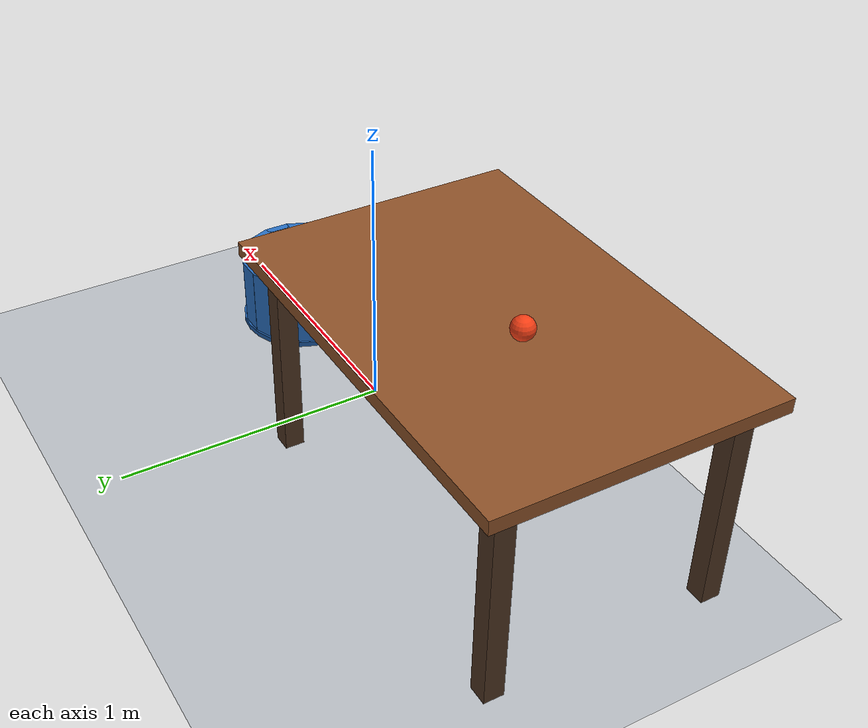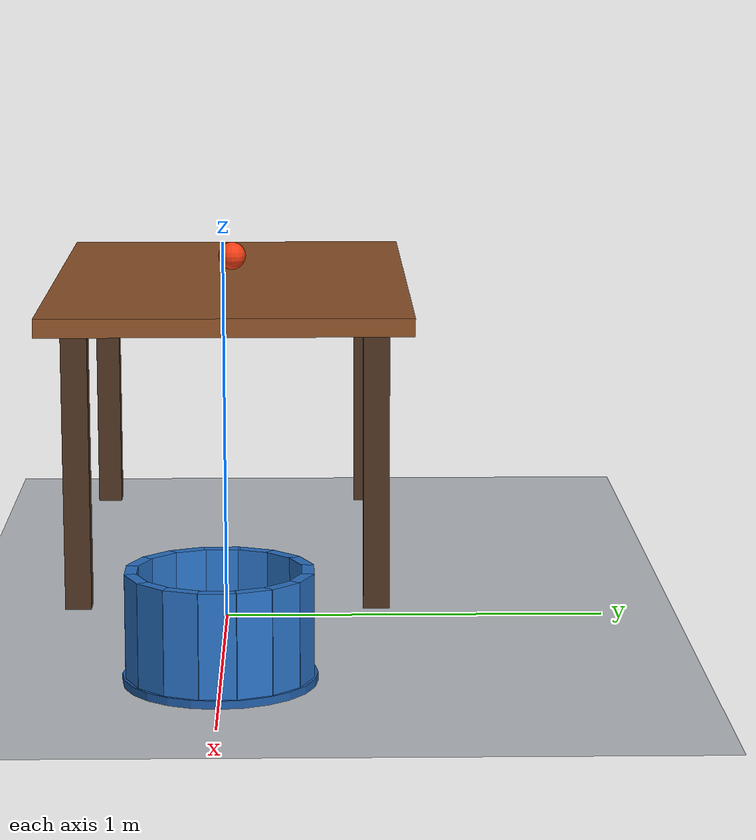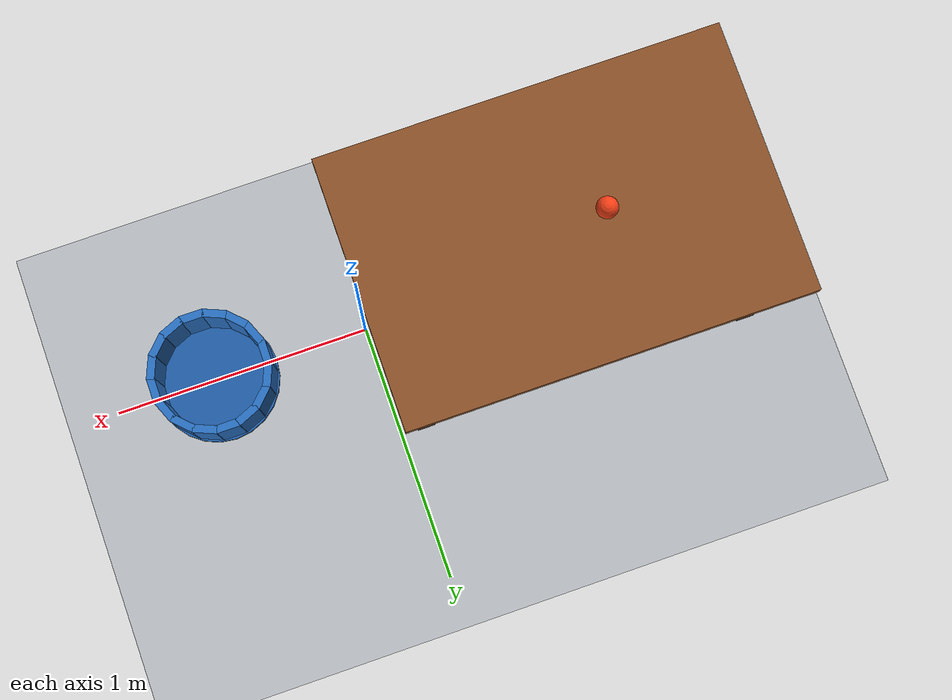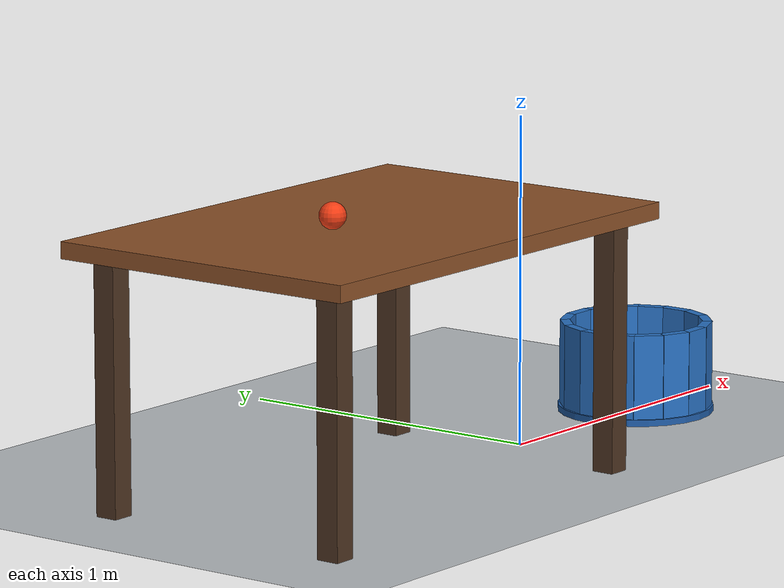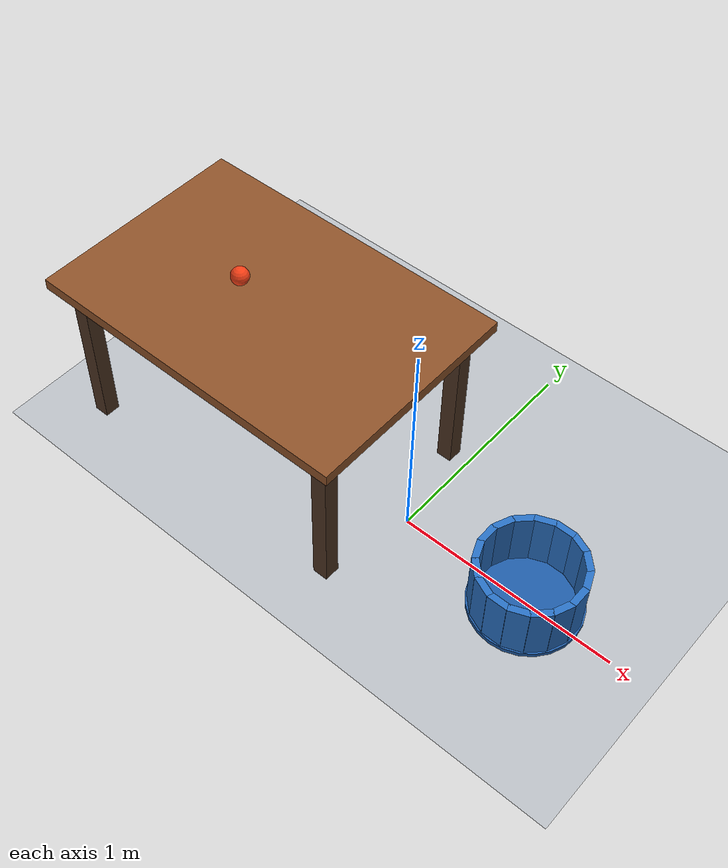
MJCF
<mujoco model="ball_table_bucket">
  <compiler angle="degree"/>
  <option timestep="0.002" gravity="0 0 -9.81" integrator="implicitfast"/>
  <size njmax="300" nconmax="100"/>

  <visual>
    <headlight ambient="0.35 0.35 0.35" diffuse="0.7 0.7 0.7" specular="0.2 0.2 0.2"/>
  </visual>

  <worldbody>
    <light name="overhead" pos="0 -1 3" dir="0 0 -1"/>
    <camera name="overview" pos="2.3 -3 2" xyaxes="0.83205 0.55470 0 -0.2682 0.4023 0.8754"/>

    <geom name="floor" type="plane" pos="0 0 0" size="4 3 0.1" friction="0.8 0.005 0.0001" rgba="0.72 0.74 0.76 1"/>

    <!-- The tabletop spans x = -1.50 to 0, with its upper surface at z = 0.80. -->
    <body name="table" pos="0 0 0">
      <geom name="table_top" type="box" pos="-0.75 0 0.775" size="0.75 0.50 0.025" condim="3" friction="0.8 0.005 0.00001" rgba="0.55 0.32 0.16 1"/>
      <geom name="table_leg_left_front" type="box" pos="-1.40 -0.40 0.375" size="0.035 0.035 0.375" rgba="0.30 0.20 0.13 1"/>
      <geom name="table_leg_left_back" type="box" pos="-1.40 0.40 0.375" size="0.035 0.035 0.375" rgba="0.30 0.20 0.13 1"/>
      <geom name="table_leg_right_front" type="box" pos="-0.10 -0.40 0.375" size="0.035 0.035 0.375" rgba="0.30 0.20 0.13 1"/>
      <geom name="table_leg_right_back" type="box" pos="-0.10 0.40 0.375" size="0.035 0.035 0.375" rgba="0.30 0.20 0.13 1"/>
    </body>

    <!-- A fixed, open bucket with a solid base and overlapping polygonal walls. -->
    <body name="bucket" pos="0.60 0 0">
      <geom name="bucket_base" type="cylinder" pos="0 0 0.01" size="0.24 0.01" condim="6" friction="0.9 0.02 0.02" solref="0.01 1" solimp="0.95 0.99 0.001" rgba="0.12 0.36 0.65 1"/>
      <geom name="bucket_wall_00" type="box" pos="0.215 0 0.15" euler="0 0 0" size="0.015 0.045 0.13" condim="6" friction="0.9 0.02 0.02" solref="0.01 1" rgba="0.16 0.44 0.76 1"/>
      <geom name="bucket_wall_01" type="box" pos="0.198634 0.082277 0.15" euler="0 0 22.5" size="0.015 0.045 0.13" condim="6" friction="0.9 0.02 0.02" solref="0.01 1" rgba="0.16 0.44 0.76 1"/>
      <geom name="bucket_wall_02" type="box" pos="0.152028 0.152028 0.15" euler="0 0 45" size="0.015 0.045 0.13" condim="6" friction="0.9 0.02 0.02" solref="0.01 1" rgba="0.16 0.44 0.76 1"/>
      <geom name="bucket_wall_03" type="box" pos="0.082277 0.198634 0.15" euler="0 0 67.5" size="0.015 0.045 0.13" condim="6" friction="0.9 0.02 0.02" solref="0.01 1" rgba="0.16 0.44 0.76 1"/>
      <geom name="bucket_wall_04" type="box" pos="0 0.215 0.15" euler="0 0 90" size="0.015 0.045 0.13" condim="6" friction="0.9 0.02 0.02" solref="0.01 1" rgba="0.16 0.44 0.76 1"/>
      <geom name="bucket_wall_05" type="box" pos="-0.082277 0.198634 0.15" euler="0 0 112.5" size="0.015 0.045 0.13" condim="6" friction="0.9 0.02 0.02" solref="0.01 1" rgba="0.16 0.44 0.76 1"/>
      <geom name="bucket_wall_06" type="box" pos="-0.152028 0.152028 0.15" euler="0 0 135" size="0.015 0.045 0.13" condim="6" friction="0.9 0.02 0.02" solref="0.01 1" rgba="0.16 0.44 0.76 1"/>
      <geom name="bucket_wall_07" type="box" pos="-0.198634 0.082277 0.15" euler="0 0 157.5" size="0.015 0.045 0.13" condim="6" friction="0.9 0.02 0.02" solref="0.01 1" rgba="0.16 0.44 0.76 1"/>
      <geom name="bucket_wall_08" type="box" pos="-0.215 0 0.15" euler="0 0 180" size="0.015 0.045 0.13" condim="6" friction="0.9 0.02 0.02" solref="0.01 1" rgba="0.16 0.44 0.76 1"/>
      <geom name="bucket_wall_09" type="box" pos="-0.198634 -0.082277 0.15" euler="0 0 202.5" size="0.015 0.045 0.13" condim="6" friction="0.9 0.02 0.02" solref="0.01 1" rgba="0.16 0.44 0.76 1"/>
      <geom name="bucket_wall_10" type="box" pos="-0.152028 -0.152028 0.15" euler="0 0 225" size="0.015 0.045 0.13" condim="6" friction="0.9 0.02 0.02" solref="0.01 1" rgba="0.16 0.44 0.76 1"/>
      <geom name="bucket_wall_11" type="box" pos="-0.082277 -0.198634 0.15" euler="0 0 247.5" size="0.015 0.045 0.13" condim="6" friction="0.9 0.02 0.02" solref="0.01 1" rgba="0.16 0.44 0.76 1"/>
      <geom name="bucket_wall_12" type="box" pos="0 -0.215 0.15" euler="0 0 270" size="0.015 0.045 0.13" condim="6" friction="0.9 0.02 0.02" solref="0.01 1" rgba="0.16 0.44 0.76 1"/>
      <geom name="bucket_wall_13" type="box" pos="0.082277 -0.198634 0.15" euler="0 0 292.5" size="0.015 0.045 0.13" condim="6" friction="0.9 0.02 0.02" solref="0.01 1" rgba="0.16 0.44 0.76 1"/>
      <geom name="bucket_wall_14" type="box" pos="0.152028 -0.152028 0.15" euler="0 0 315" size="0.015 0.045 0.13" condim="6" friction="0.9 0.02 0.02" solref="0.01 1" rgba="0.16 0.44 0.76 1"/>
      <geom name="bucket_wall_15" type="box" pos="0.198634 -0.082277 0.15" euler="0 0 337.5" size="0.015 0.045 0.13" condim="6" friction="0.9 0.02 0.02" solref="0.01 1" rgba="0.16 0.44 0.76 1"/>
    </body>

    <body name="ball" pos="-0.90 0 0.84">
      <freejoint name="ball_free"/>
      <geom name="ball" type="sphere" size="0.04" mass="0.15" condim="3" friction="0.8 0.005 0.00001" solref="0.01 1" solimp="0.95 0.99 0.001" rgba="0.95 0.24 0.08 1"/>
    </body>
  </worldbody>

  <keyframe>
    <key name="start" qpos="-0.90 0 0.84 1 0 0 0" qvel="1.50 0 0 0 37.50 0"/>
  </keyframe>
</mujoco>
